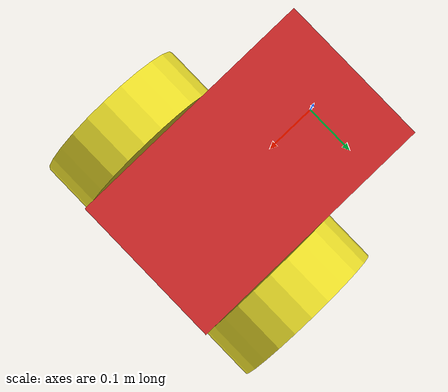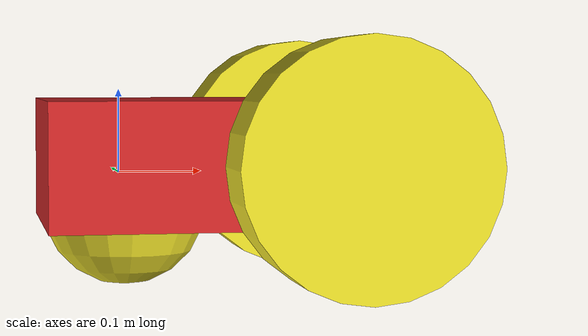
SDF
<?xml version='1.0'?>
<sdf version='1.6'>
  <model name='myrobot'>
    <link name='body'>
      <inertial>
        <mass>1</mass>
        <inertia>
          <ixx>0.166667</ixx>
          <ixy>0</ixy>
          <ixz>0</ixz>
          <iyy>0.166667</iyy>
          <iyz>0</iyz>
          <izz>0.166667</izz>
        </inertia>
        <pose frame=''>0 0 0 0 -0 0</pose>
      </inertial>
      <pose frame=''>0.157694 0.006396 0.013088 0 -0 0</pose>
      <gravity>1</gravity>
      <self_collide>0</self_collide>
      <kinematic>0</kinematic>
      <enable_wind>0</enable_wind>
      <visual name='visual'>
        <pose frame=''>0 0 0 0 -0 0</pose>
        <geometry>
          <box>
            <size>0.5 0.3 0.15</size>
          </box>
        </geometry>
        <material>
          <lighting>1</lighting>
          <script>
            <uri>file://media/materials/scripts/gazebo.material</uri>
            <name>Gazebo/Red</name>
          </script>
          <shader type='pixel'>
            <normal_map>__default__</normal_map>
          </shader>
          <ambient>0.8 0 0 1</ambient>
          <diffuse>0.8 0 0 1</diffuse>
          <specular>0.01 0.01 0.01 1</specular>
          <emissive>0 0 0 1</emissive>
        </material>
        <transparency>0</transparency>
        <cast_shadows>1</cast_shadows>
      </visual>
      <collision name='collision'>
        <laser_retro>0</laser_retro>
        <max_contacts>10</max_contacts>
        <pose frame=''>0 0 0 0 -0 0</pose>
        <geometry>
          <box>
            <size>0.5 0.3 0.15</size>
          </box>
        </geometry>
        <surface>
          <friction>
            <ode>
              <mu>1</mu>
              <mu2>1</mu2>
              <fdir1>0 0 0</fdir1>
              <slip1>0</slip1>
              <slip2>0</slip2>
            </ode>
            <torsional>
              <coefficient>1</coefficient>
              <patch_radius>0</patch_radius>
              <surface_radius>0</surface_radius>
              <use_patch_radius>1</use_patch_radius>
              <ode>
                <slip>0</slip>
              </ode>
            </torsional>
          </friction>
          <bounce>
            <restitution_coefficient>0</restitution_coefficient>
            <threshold>1e+06</threshold>
          </bounce>
          <contact>
            <collide_without_contact>0</collide_without_contact>
            <collide_without_contact_bitmask>1</collide_without_contact_bitmask>
            <collide_bitmask>1</collide_bitmask>
            <ode>
              <soft_cfm>0</soft_cfm>
              <soft_erp>0.2</soft_erp>
              <kp>1e+13</kp>
              <kd>1</kd>
              <max_vel>0.01</max_vel>
              <min_depth>0</min_depth>
            </ode>
            <bullet>
              <split_impulse>1</split_impulse>
              <split_impulse_penetration_threshold>-0.01</split_impulse_penetration_threshold>
              <soft_cfm>0</soft_cfm>
              <soft_erp>0.2</soft_erp>
              <kp>1e+13</kp>
              <kd>1</kd>
            </bullet>
          </contact>
        </surface>
      </collision>
    </link>
    <link name='ball'>
      <inertial>
        <mass>1</mass>
        <inertia>
          <ixx>0.1</ixx>
          <ixy>0</ixy>
          <ixz>0</ixz>
          <iyy>0.1</iyy>
          <iyz>0</iyz>
          <izz>0.1</izz>
        </inertia>
        <pose frame=''>0 0 0 0 -0 0</pose>
      </inertial>
      <pose frame=''>0.007694 0.006396 -0.036912 0 -0 0</pose>
      <gravity>1</gravity>
      <self_collide>0</self_collide>
      <kinematic>0</kinematic>
      <enable_wind>0</enable_wind>
      <visual name='visual'>
        <pose frame=''>0 0 0 0 -0 0</pose>
        <geometry>
          <sphere>
            <radius>0.1</radius>
          </sphere>
        </geometry>
        <material>
          <lighting>1</lighting>
          <script>
            <uri>file://media/materials/scripts/gazebo.material</uri>
            <name>Gazebo/Yellow</name>
          </script>
          <shader type='pixel'>
            <normal_map>__default__</normal_map>
          </shader>
          <ambient>0.8 0.8 0.8 1</ambient>
          <diffuse>0.8 0 0 1</diffuse>
          <specular>0.01 0.01 0.01 1</specular>
          <emissive>0 0 0 1</emissive>
        </material>
        <transparency>0</transparency>
        <cast_shadows>1</cast_shadows>
      </visual>
      <collision name='collision'>
        <laser_retro>0</laser_retro>
        <max_contacts>10</max_contacts>
        <pose frame=''>0 0 0 0 -0 0</pose>
        <geometry>
          <sphere>
            <radius>0.1</radius>
          </sphere>
        </geometry>
        <surface>
          <friction>
            <ode>
              <mu>1</mu>
              <mu2>1</mu2>
              <fdir1>0 0 0</fdir1>
              <slip1>0</slip1>
              <slip2>0</slip2>
            </ode>
            <torsional>
              <coefficient>1</coefficient>
              <patch_radius>0</patch_radius>
              <surface_radius>0</surface_radius>
              <use_patch_radius>1</use_patch_radius>
              <ode>
                <slip>0</slip>
              </ode>
            </torsional>
          </friction>
          <bounce>
            <restitution_coefficient>0</restitution_coefficient>
            <threshold>1e+06</threshold>
          </bounce>
          <contact>
            <collide_without_contact>0</collide_without_contact>
            <collide_without_contact_bitmask>1</collide_without_contact_bitmask>
            <collide_bitmask>1</collide_bitmask>
            <ode>
              <soft_cfm>0</soft_cfm>
              <soft_erp>0.2</soft_erp>
              <kp>1e+13</kp>
              <kd>1</kd>
              <max_vel>0.01</max_vel>
              <min_depth>0</min_depth>
            </ode>
            <bullet>
              <split_impulse>1</split_impulse>
              <split_impulse_penetration_threshold>-0.01</split_impulse_penetration_threshold>
              <soft_cfm>0</soft_cfm>
              <soft_erp>0.2</soft_erp>
              <kp>1e+13</kp>
              <kd>1</kd>
            </bullet>
          </contact>
        </surface>
      </collision>
    </link>
    <link name='left_wheel'>
      <inertial>
        <mass>1</mass>
        <inertia>
          <ixx>0.145833</ixx>
          <ixy>0</ixy>
          <ixz>0</ixz>
          <iyy>0.145833</iyy>
          <iyz>0</iyz>
          <izz>0.125</izz>
        </inertia>
        <pose frame=''>0 0 0 0 -0 0</pose>
      </inertial>
      <pose frame=''>0.257694 -0.193604 0.013089 1.5708 -0 0</pose>
      <gravity>1</gravity>
      <self_collide>0</self_collide>
      <kinematic>0</kinematic>
      <enable_wind>0</enable_wind>
      <visual name='visual'>
        <pose frame=''>0 0 0 0 -0 0</pose>
        <geometry>
          <cylinder>
            <radius>0.15</radius>
            <length>0.1</length>
          </cylinder>
        </geometry>
        <material>
          <lighting>1</lighting>
          <script>
            <uri>file://media/materials/scripts/gazebo.material</uri>
            <name>Gazebo/Yellow</name>
          </script>
          <shader type='pixel'>
            <normal_map>__default__</normal_map>
          </shader>
          <ambient>0.8 0.8 0 1</ambient>
          <diffuse>0.8 0.8 0 1</diffuse>
          <specular>0.01 0.01 0.01 1</specular>
          <emissive>0 0 0 1</emissive>
        </material>
        <transparency>0</transparency>
        <cast_shadows>1</cast_shadows>
      </visual>
      <collision name='collision'>
        <laser_retro>0</laser_retro>
        <max_contacts>10</max_contacts>
        <pose frame=''>0 0 0 0 -0 0</pose>
        <geometry>
          <cylinder>
            <radius>0.15</radius>
            <length>0.1</length>
          </cylinder>
        </geometry>
        <surface>
          <friction>
            <ode>
              <mu>1</mu>
              <mu2>1</mu2>
              <fdir1>0 0 0</fdir1>
              <slip1>0</slip1>
              <slip2>0</slip2>
            </ode>
            <torsional>
              <coefficient>1</coefficient>
              <patch_radius>0</patch_radius>
              <surface_radius>0</surface_radius>
              <use_patch_radius>1</use_patch_radius>
              <ode>
                <slip>0</slip>
              </ode>
            </torsional>
          </friction>
          <bounce>
            <restitution_coefficient>0</restitution_coefficient>
            <threshold>1e+06</threshold>
          </bounce>
          <contact>
            <collide_without_contact>0</collide_without_contact>
            <collide_without_contact_bitmask>1</collide_without_contact_bitmask>
            <collide_bitmask>1</collide_bitmask>
            <ode>
              <soft_cfm>0</soft_cfm>
              <soft_erp>0.2</soft_erp>
              <kp>1e+13</kp>
              <kd>1</kd>
              <max_vel>0.01</max_vel>
              <min_depth>0</min_depth>
            </ode>
            <bullet>
              <split_impulse>1</split_impulse>
              <split_impulse_penetration_threshold>-0.01</split_impulse_penetration_threshold>
              <soft_cfm>0</soft_cfm>
              <soft_erp>0.2</soft_erp>
              <kp>1e+13</kp>
              <kd>1</kd>
            </bullet>
          </contact>
        </surface>
      </collision>
    </link>
    <link name='right_wheel'>
      <inertial>
        <mass>1</mass>
        <inertia>
          <ixx>0.145833</ixx>
          <ixy>0</ixy>
          <ixz>0</ixz>
          <iyy>0.145833</iyy>
          <iyz>0</iyz>
          <izz>0.125</izz>
        </inertia>
        <pose frame=''>0 0 0 0 -0 0</pose>
      </inertial>
      <pose frame=''>0.257694 0.206397 0.013089 1.5708 -0 0</pose>
      <gravity>1</gravity>
      <self_collide>0</self_collide>
      <kinematic>0</kinematic>
      <enable_wind>0</enable_wind>
      <visual name='visual'>
        <pose frame=''>0 0 0 0 -0 0</pose>
        <geometry>
          <cylinder>
            <radius>0.15</radius>
            <length>0.1</length>
          </cylinder>
        </geometry>
        <material>
          <lighting>1</lighting>
          <script>
            <uri>file://media/materials/scripts/gazebo.material</uri>
            <name>Gazebo/Yellow</name>
          </script>
          <shader type='pixel'>
            <normal_map>__default__</normal_map>
          </shader>
          <ambient>0.8 0.8 0 1</ambient>
          <diffuse>0.8 0.8 0 1</diffuse>
          <specular>0.01 0.01 0.01 1</specular>
          <emissive>0 0 0 1</emissive>
        </material>
        <transparency>0</transparency>
        <cast_shadows>1</cast_shadows>
      </visual>
      <collision name='collision'>
        <laser_retro>0</laser_retro>
        <max_contacts>10</max_contacts>
        <pose frame=''>0 0 0 0 -0 0</pose>
        <geometry>
          <cylinder>
            <radius>0.15</radius>
            <length>0.1</length>
          </cylinder>
        </geometry>
        <surface>
          <friction>
            <ode>
              <mu>1</mu>
              <mu2>1</mu2>
              <fdir1>0 0 0</fdir1>
              <slip1>0</slip1>
              <slip2>0</slip2>
            </ode>
            <torsional>
              <coefficient>1</coefficient>
              <patch_radius>0</patch_radius>
              <surface_radius>0</surface_radius>
              <use_patch_radius>1</use_patch_radius>
              <ode>
                <slip>0</slip>
              </ode>
            </torsional>
          </friction>
          <bounce>
            <restitution_coefficient>0</restitution_coefficient>
            <threshold>1e+06</threshold>
          </bounce>
          <contact>
            <collide_without_contact>0</collide_without_contact>
            <collide_without_contact_bitmask>1</collide_without_contact_bitmask>
            <collide_bitmask>1</collide_bitmask>
            <ode>
              <soft_cfm>0</soft_cfm>
              <soft_erp>0.2</soft_erp>
              <kp>1e+13</kp>
              <kd>1</kd>
              <max_vel>0.01</max_vel>
              <min_depth>0</min_depth>
            </ode>
            <bullet>
              <split_impulse>1</split_impulse>
              <split_impulse_penetration_threshold>-0.01</split_impulse_penetration_threshold>
              <soft_cfm>0</soft_cfm>
              <soft_erp>0.2</soft_erp>
              <kp>1e+13</kp>
              <kd>1</kd>
            </bullet>
          </contact>
        </surface>
      </collision>
    </link>
    <joint name='body_JOINT_0' type='revolute'>
      <parent>body</parent>
      <child>left_wheel</child>
      <pose frame=''>0 0 0 0 -0 0</pose>
      <axis>
        <xyz>0 0 1</xyz>
        <use_parent_model_frame>0</use_parent_model_frame>
        <limit>
          <lower>-1.79769e+308</lower>
          <upper>1.79769e+308</upper>
          <effort>-1</effort>
          <velocity>-1</velocity>
        </limit>
        <dynamics>
          <spring_reference>0</spring_reference>
          <spring_stiffness>0</spring_stiffness>
          <damping>0</damping>
          <friction>0</friction>
        </dynamics>
      </axis>
      <physics>
        <ode>
          <limit>
            <cfm>0</cfm>
            <erp>0.2</erp>
          </limit>
          <suspension>
            <cfm>0</cfm>
            <erp>0.2</erp>
          </suspension>
        </ode>
      </physics>
    </joint>
    <joint name='body_JOINT_1' type='revolute'>
      <parent>body</parent>
      <child>right_wheel</child>
      <pose frame=''>0 0 0 0 -0 0</pose>
      <axis>
        <xyz>0 0 1</xyz>
        <use_parent_model_frame>0</use_parent_model_frame>
        <limit>
          <lower>-1.79769e+308</lower>
          <upper>1.79769e+308</upper>
          <effort>-1</effort>
          <velocity>-1</velocity>
        </limit>
        <dynamics>
          <spring_reference>0</spring_reference>
          <spring_stiffness>0</spring_stiffness>
          <damping>0</damping>
          <friction>0</friction>
        </dynamics>
      </axis>
      <physics>
        <ode>
          <limit>
            <cfm>0</cfm>
            <erp>0.2</erp>
          </limit>
          <suspension>
            <cfm>0</cfm>
            <erp>0.2</erp>
          </suspension>
        </ode>
      </physics>
    </joint>
    <joint name='body_JOINT_2' type='ball'>
      <parent>body</parent>
      <child>ball</child>
      <pose frame=''>0 0 0 -0.04 0 0</pose>
      <physics>
        <ode>
          <limit>
            <cfm>0</cfm>
            <erp>0.2</erp>
          </limit>
          <suspension>
            <cfm>0</cfm>
            <erp>0.2</erp>
          </suspension>
        </ode>
      </physics>
    </joint>
    <static>0</static>
    <allow_auto_disable>1</allow_auto_disable>

    <plugin name='drive' filename='libgazebo_ros_diff_drive.so'>
	<alwaysOn>true</alwaysOn>
    	<updateRate>2</updateRate>
	<leftJoint>body_JOINT_0</leftJoint>
	<rightJoint>body_JOINT_1</rightJoint>
	<wheelSeparation>0.3</wheelSeparation>
	<wheelDiameter>0.3</wheelDiameter>
	<torque>20</torque>
	<commandTopic>myrobot/cmd_vel</commandTopic>
	<odometryTopic>odom</odometryTopic>
	<odometryFrame>odom</odometryFrame>
	<robotBaseFrame>base_footprint</robotBaseFrame>
    </plugin>
  </model>
</sdf>
